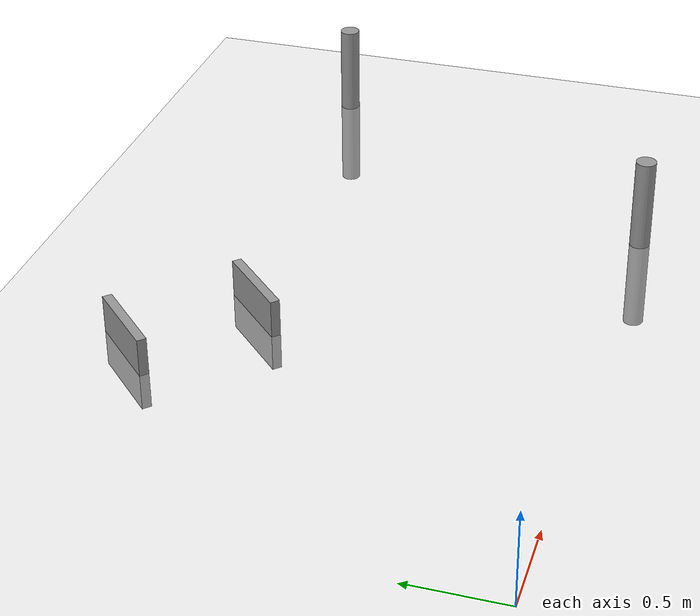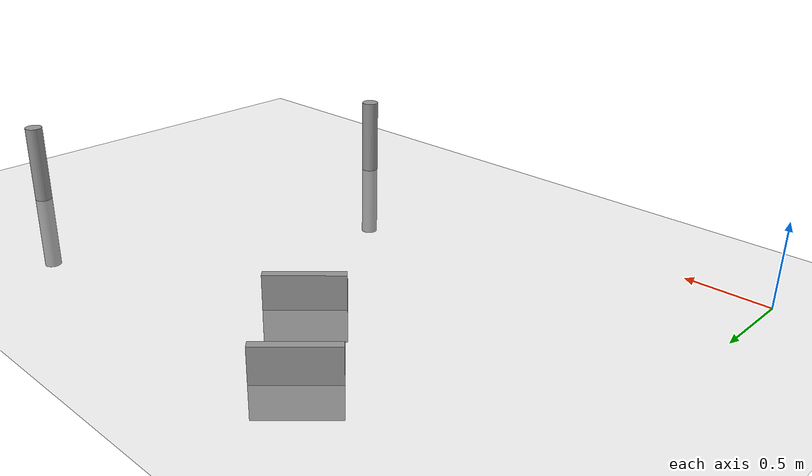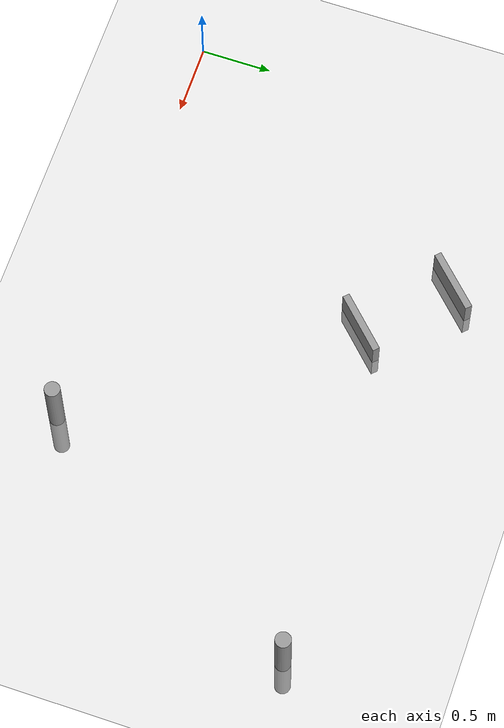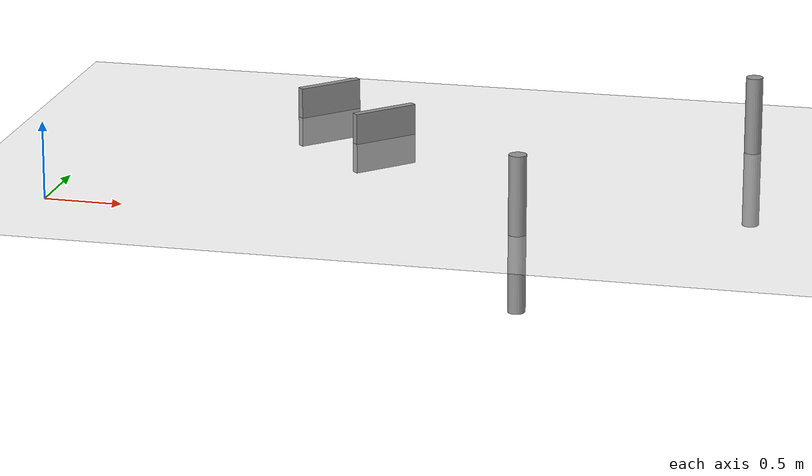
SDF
<sdf version="1.4">
 <world name="default">
  <light name="sun" type="directional">
   <pose>0 0 10 0 -0 0</pose>
   <diffuse>0.8 0.8 0.8 1</diffuse>
   <specular>0.2 0.2 0.2 1</specular>
   <attenuation>
    <range>1000</range>
    <constant>0.9</constant>
    <linear>0.01</linear>
    <quadratic>0.001</quadratic>
   </attenuation>
   <direction>-0.5 0.1 -0.9</direction>
  </light>
  <model name="ground_plane">
   <static>1</static>
   <link name="link">
    <collision name="collision">
     <geometry><plane><normal>0 0 1</normal><size>100 100</size></plane></geometry>
     <surface><friction><ode><mu>100</mu><mu2>50</mu2></ode></friction></surface>
    </collision>
    <visual name="visual">
     <cast_shadows>0</cast_shadows>
     <geometry><plane><normal>0 0 1</normal><size>100 100</size></plane></geometry>
     <material>
      <script><uri>file://media/materials/scripts/gazebo.material</uri><name>Gazebo/Grey</name></script>
     </material>
    </visual>
    <velocity_decay><linear>0</linear><angular>0</angular></velocity_decay>
   </link>
  </model>
  <physics type="ode">
   <max_step_size>0.001</max_step_size>
   <real_time_factor>1</real_time_factor>
   <real_time_update_rate>1000</real_time_update_rate>
   <gravity>0 0 -9.8</gravity>
  </physics>
  <scene><ambient>0.4 0.4 0.4 1</ambient><background>0.7 0.7 0.7 1</background><shadows>1</shadows></scene>
  <spherical_coordinates>
   <surface_model>EARTH_WGS84</surface_model>
   <latitude_deg>0</latitude_deg>
   <longitude_deg>0</longitude_deg>
   <elevation>0</elevation>
   <heading_deg>0</heading_deg>
  </spherical_coordinates>
  <model name="yamasemi_pole">
   <pose>3 0 0 0 0 0</pose>
   <static>0</static>
   <link name="link">
    <inertial>
     <mass>1</mass>
     <inertia><ixx>0.3</ixx><ixy>0</ixy><ixz>0</ixz><iyy>0</iyy><iyz>0</iyz><izz>0.3</izz></inertia>
    </inertial>
    <collision name="collision">
     <geometry><cylinder><radius>0.055</radius><length>1</length></cylinder></geometry>
    </collision>
    <visual name="visual">
     <geometry><cylinder><radius>0.055</radius><length>1</length></cylinder></geometry>
     <material>
      <script><uri>file://media/materials/scripts/gazebo.material</uri><name>Gazebo/Grey</name></script>
     </material>
    </visual>
    <self_collide>1</self_collide>
    <velocity_decay><linear>0</linear><angular>0</angular></velocity_decay>
   </link>
  </model>
  <model name="yamasemi_pole_0">
   <pose>4.15 2 0 0 0 0</pose>
   <static>0</static>
   <link name="link">
    <inertial>
     <mass>1</mass>
     <inertia><ixx>0.3</ixx><ixy>0</ixy><ixz>0</ixz><iyy>0</iyy><iyz>0</iyz><izz>0.3</izz></inertia>
    </inertial>
    <collision name="collision">
     <geometry><cylinder><radius>0.055</radius><length>1</length></cylinder></geometry>
    </collision>
    <visual name="visual">
     <geometry><cylinder><radius>0.055</radius><length>1</length></cylinder></geometry>
     <material>
      <script><uri>file://media/materials/scripts/gazebo.material</uri><name>Gazebo/Grey</name></script>
     </material>
    </visual>
    <self_collide>1</self_collide>
    <velocity_decay><linear>0</linear><angular>0</angular></velocity_decay>
   </link>
  </model>
  <model name="unit_box_1">
   <pose>1.75 1.75 0 0 0 2.36</pose>
   <static>0</static>
   <link name="link">
    <inertial>
     <mass>1</mass>
     <inertia><ixx>0.01</ixx><ixy>0</ixy><ixz>0</ixz><iyy>0.02</iyy><iyz>0</iyz><izz>0.03</izz></inertia>
    </inertial>
    <collision name="collision"><geometry><box><size>0.05 0.45 0.4</size></box></geometry></collision>
    <visual name="visual">
     <geometry><box><size>0.05 0.45 0.4</size></box></geometry>
     <material>
      <script><uri>file://media/materials/scripts/gazebo.material</uri><name>Gazebo/Grey</name></script>
     </material>
    </visual>
    <self_collide>1</self_collide>
    <velocity_decay><linear>0</linear><angular>0</angular></velocity_decay>
   </link>
  </model>
  <model name="unit_box_1_0">
   <pose>1.25 2.25 0 0 0 2.36</pose>
   <static>0</static>
   <link name="link">
    <inertial>
     <mass>1</mass>
     <inertia><ixx>0.01</ixx><ixy>0</ixy><ixz>0</ixz><iyy>0.02</iyy><iyz>0</iyz><izz>0.03</izz></inertia>
    </inertial>
    <collision name="collision"><geometry><box><size>0.05 0.45 0.4</size></box></geometry></collision>
    <visual name="visual">
     <geometry><box><size>0.05 0.45 0.4</size></box></geometry>
     <material>
      <script><uri>file://media/materials/scripts/gazebo.material</uri><name>Gazebo/Grey</name></script>
     </material>
    </visual>
    <self_collide>1</self_collide>
    <velocity_decay><linear>0</linear><angular>0</angular></velocity_decay>
   </link>
  </model>
 </world>
</sdf>
